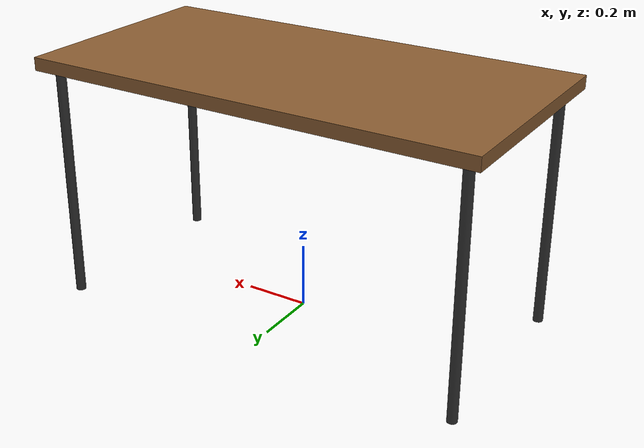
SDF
<?xml version="1.0"?>
<sdf version="1.10">
  <model name="lecture_desk">
    <static>true</static>

    <link name="desk">

      <!-- Inertia -->
      <inertial>
        <mass>15</mass>
        <inertia>
          <ixx>0.3</ixx><iyy>0.3</iyy><izz>0.3</izz>
        </inertia>
      </inertial>

      <!-- TABLETOP -->
      <visual name="top">
        <pose>0 0 0.75 0 0 0</pose>
        <geometry>
          <box><size>1.4 0.7 0.04</size></box>
        </geometry>
        <material>
          <diffuse>0.55 0.37 0.20 1</diffuse> <!-- Wood color -->
          <specular>0.2 0.2 0.2 1</specular>
        </material>
      </visual>

      <collision name="top_col">
        <pose>0 0 0.75 0 0 0</pose>
        <geometry><box><size>1.4 0.7 0.04</size></box></geometry>
      </collision>

      <!-- LEGS -->
      <visual name="leg1"><pose> 0.65  0.3 0.375 0 0 0</pose><geometry><cylinder><radius>0.015</radius><length>0.75</length></cylinder></geometry><material><diffuse>0.2 0.2 0.2 1</diffuse></material></visual>
      <visual name="leg2"><pose>-0.65  0.3 0.375 0 0 0</pose><geometry><cylinder><radius>0.015</radius><length>0.75</length></cylinder></geometry><material><diffuse>0.2 0.2 0.2 1</diffuse></material></visual>
      <visual name="leg3"><pose> 0.65 -0.3 0.375 0 0 0</pose><geometry><cylinder><radius>0.015</radius><length>0.75</length></cylinder></geometry><material><diffuse>0.2 0.2 0.2 1</diffuse></material></visual>
      <visual name="leg4"><pose>-0.65 -0.3 0.375 0 0 0</pose><geometry><cylinder><radius>0.015</radius><length>0.75</length></cylinder></geometry><material><diffuse>0.2 0.2 0.2 1</diffuse></material></visual>

      <collision name="leg1_col"><pose> 0.65  0.3 0.375 0 0 0</pose><geometry><cylinder><radius>0.015</radius><length>0.75</length></cylinder></geometry></collision>
      <collision name="leg2_col"><pose>-0.65  0.3 0.375 0 0 0</pose><geometry><cylinder><radius>0.015</radius><length>0.75</length></cylinder></geometry></collision>
      <collision name="leg3_col"><pose> 0.65 -0.3 0.375 0 0 0</pose><geometry><cylinder><radius>0.015</radius><length>0.75</length></cylinder></geometry></collision>
      <collision name="leg4_col"><pose>-0.65 -0.3 0.375 0 0 0</pose><geometry><cylinder><radius>0.015</radius><length>0.75</length></cylinder></geometry></collision>

    </link>
  </model>
</sdf>
